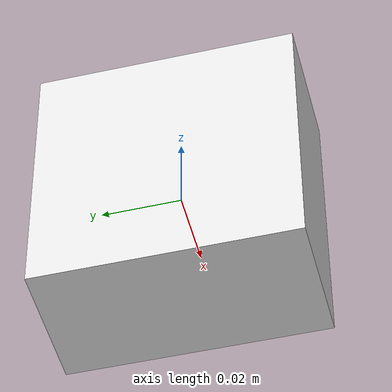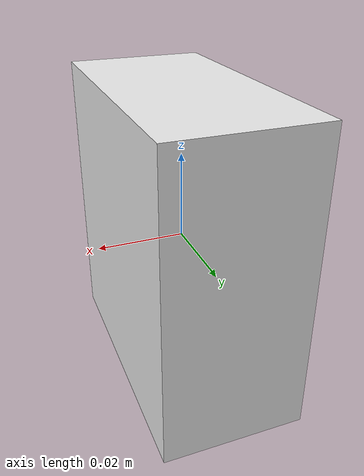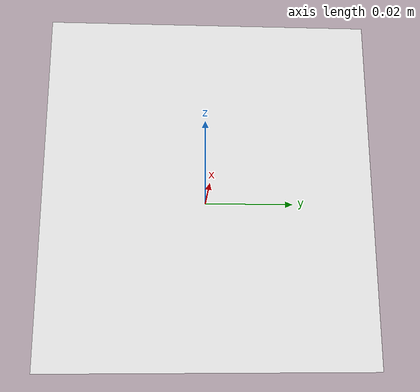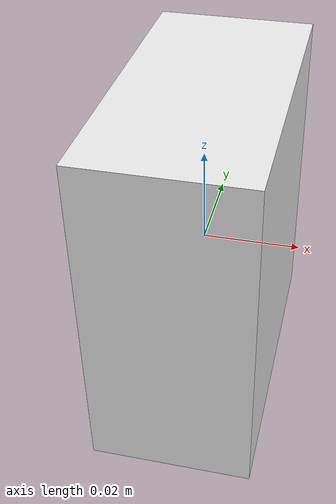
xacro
<?xml version="1.0"?>
<robot xmlns:xacro="https://www.ros.org/wiki/xacro" name="obstacle">

    <xacro:include filename="$(find ros_basics_models)/urdf/utils/inertia.xacro" />
    <xacro:include filename="$(find ros_basics_models)/urdf/utils/materials.xacro" />

    <xacro:arg name="mass" default="0.100"/>
    <xacro:property name="mass_p" value="$(arg mass)"/>
    <xacro:property name="body_mass" value="${mass_p}"/>

    <link name="box">
        <visual>
            <origin xyz="0 0 0" rpy="0 0 0"/>
            <geometry>
                <box size="0.033 0.065 0.07"/>
            </geometry>
            <material name="white"/>
        </visual>
        <collision>
            <origin xyz="0 0 0" rpy="0 0 0"/>
            <geometry>
                <box size="0.033 0.065 0.07"/>
            </geometry>
            <material name="white"/>
        </collision>
        <inertial>
			<mass value="${body_mass}"/>
			<xacro:box_inertia mass="${body_mass}" x="0.033" y="0.065" z="0.07" />
		</inertial>
    </link>

</robot>
